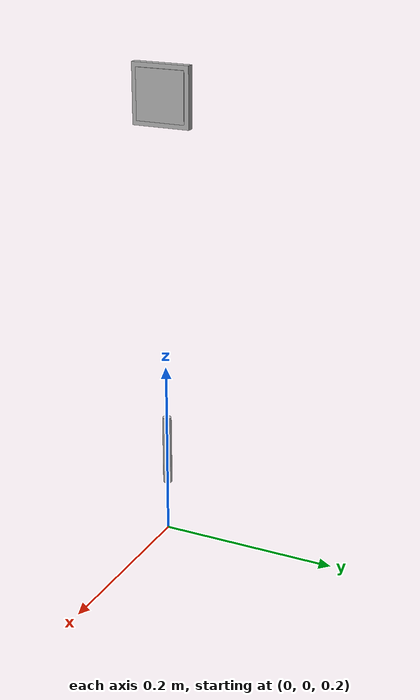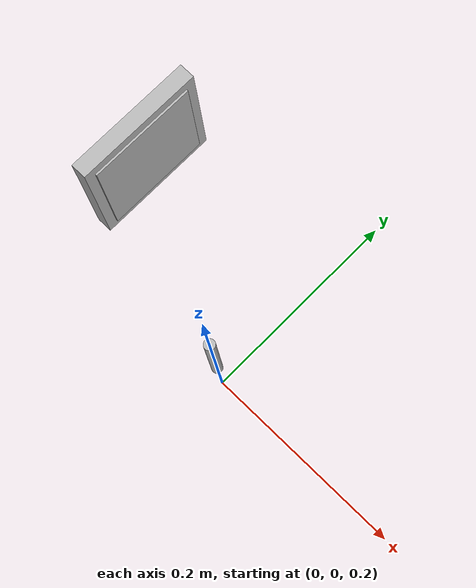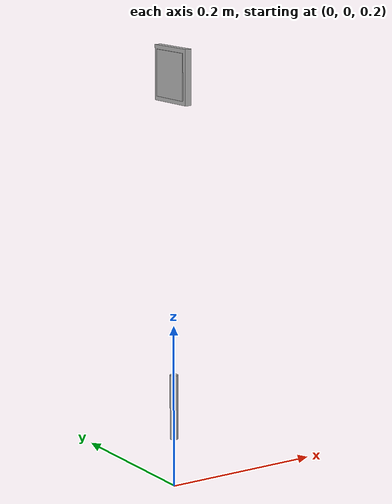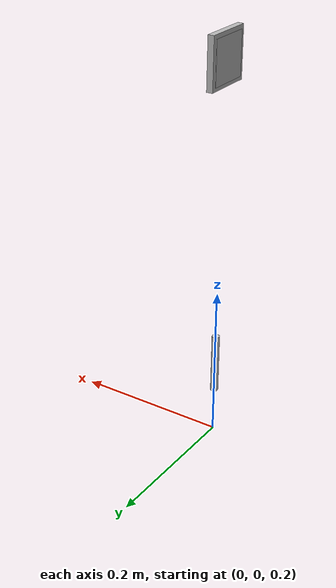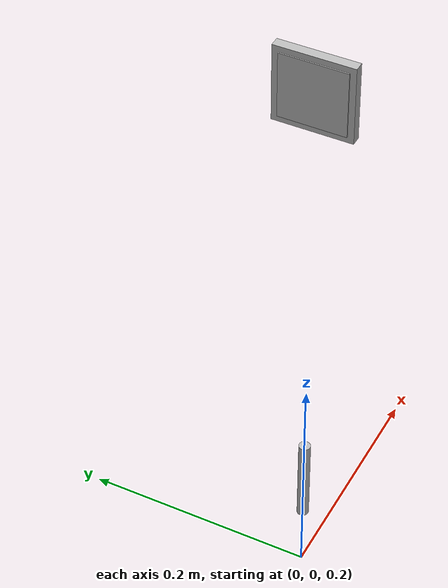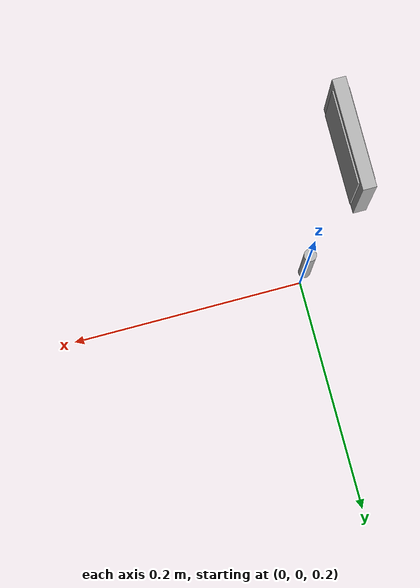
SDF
<?xml version="1.0" ?>
<sdf version="1.6">
<model name="pickable_object">
	<static>false</static>

	<!-- Global pose -->
	<pose>0 0 0.3 0 0 0</pose>

	<link name="object">

		<!-- Minimal inertial values -->
		<inertial>
			<mass>0.05</mass>
			<inertia>
				<ixx>1e-5</ixx>
				<iyy>1e-5</iyy>
				<izz>1e-5</izz>
			</inertia>
		</inertial>

		<!-- Collision -->
		<collision name="collision">
			<geometry>
				<cylinder>
					<radius>0.005</radius>
					<length>0.08</length>
				</cylinder>
			</geometry>
		</collision>

		<!-- Visual -->
		<visual name="visual">
			<geometry>
				<cylinder>
					<radius>0.005</radius>
					<length>0.08</length>
				</cylinder>
			</geometry>
		</visual>

		<!-- Marker set precisely 40cm + 4cm = 44cm above center of object -->
		<visual name="visual-mesh">
			<pose>0 0 0.4 0 0 1.57</pose>
			<geometry>
				<mesh>
					<uri>model://aruco_marker/meshes/ArUcoMarker.dae</uri>
				</mesh>
			</geometry>
		</visual>

		<visual name="visual-frame">
			<pose>0 0 0.4 1.57 0 0</pose>
			<geometry>
				<box>
					<size>0.008 0.065 0.065</size>
				</box>
			</geometry>
		</visual>

	</link>

</model>
</sdf>
